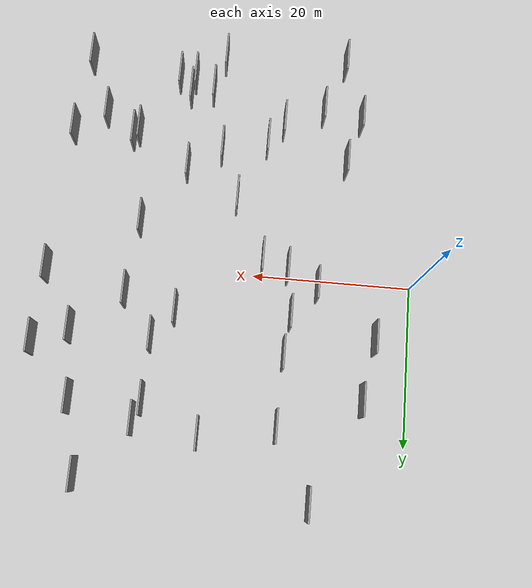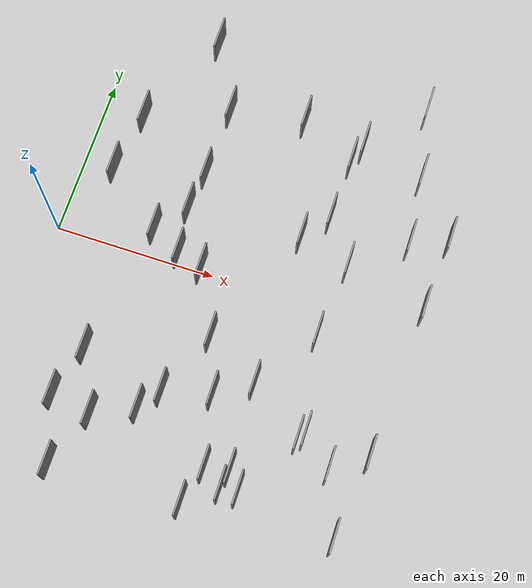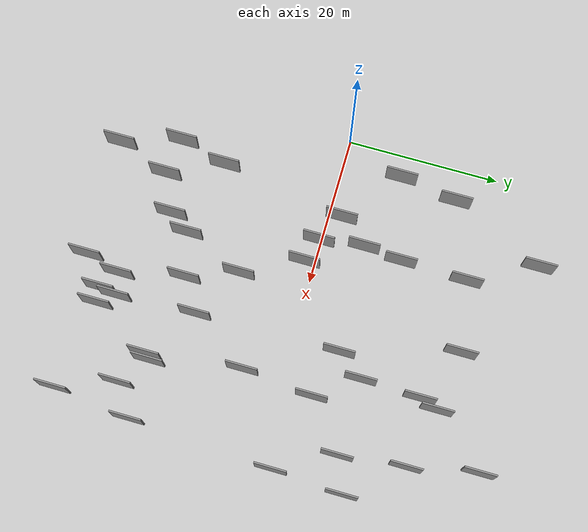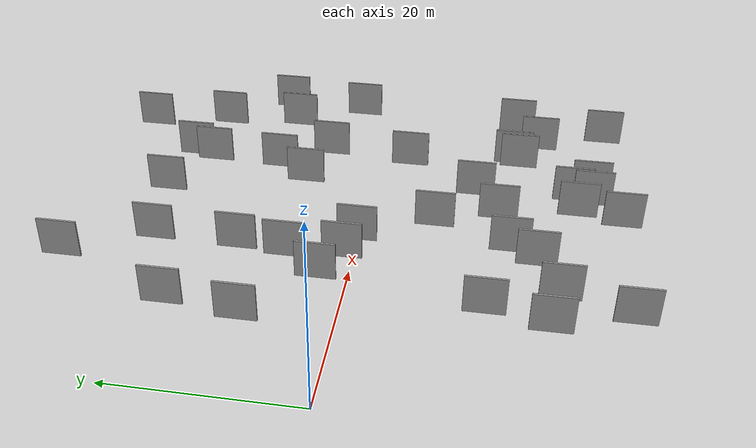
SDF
<sdf version="1.6">
 <world name="default">
  <scene>
   <sky><clouds><speed>12</speed></clouds></sky>
   <ambient>0.4 0.4 0.4 1</ambient>
   <background>0.7 0.7 0.7 1</background>
   <shadows>1</shadows>
  </scene>
  <gravity>0 0 -9.8066</gravity>
  <magnetic_field>6e-06 2.3e-05 -4.2e-05</magnetic_field>
  <physics default="0" name="default_physics" type="ode">
   <ode>
    <solver>
     <type>quick</type>
     <iters>10</iters>
     <sor>1.0</sor>
     <use_dynamic_moi_rescaling>0</use_dynamic_moi_rescaling>
    </solver>
    <constraints>
     <cfm>0</cfm>
     <erp>0.2</erp>
     <contact_max_correcting_vel>100</contact_max_correcting_vel>
     <contact_surface_layer>0.001</contact_surface_layer>
    </constraints>
   </ode>
   <max_step_size>0.004</max_step_size>
   <real_time_factor>1</real_time_factor>
   <real_time_update_rate>250</real_time_update_rate>
  </physics>
  <light name="sun" type="directional">
   <pose>0 0 10 0 0 0</pose>
   <diffuse>0.8 0.8 0.8 1</diffuse>
   <specular>0.2 0.2 0.2 1</specular>
   <attenuation>
    <range>1000</range>
    <constant>0.9</constant>
    <linear>0.01</linear>
    <quadratic>0.001</quadratic>
   </attenuation>
   <direction>-0.5 0.1 -0.9</direction>
  </light>
  <model name="grey_wall_1">
   <static>1</static>
   <pose>25.0478 20.5484 5.0 0.000000 0.000000 1.570796</pose>
   <link name="link">
    <pose>0 0 2.00 0 0 0</pose>
    <collision name="collision"><geometry><box><size>4.00 0.2 4.00</size></box></geometry></collision>
    <visual name="visual">
     <cast_shadows>0</cast_shadows>
     <geometry><box><size>4.00 0.2 4.00</size></box></geometry>
     <material>
      <script>
       <uri>model://grey_wall/materials/scripts</uri>
       <uri>model://grey_wall/materials/textures</uri>
       <name>vrc/grey_wall</name>
      </script>
     </material>
    </visual>
   </link>
  </model>
  <model name="grey_wall_2">
   <static>1</static>
   <pose>31.3514 -24.1442 5.0 0.000000 0.000000 1.570796</pose>
   <link name="link">
    <pose>0 0 2.00 0 0 0</pose>
    <collision name="collision"><geometry><box><size>4.00 0.2 4.00</size></box></geometry></collision>
    <visual name="visual">
     <cast_shadows>0</cast_shadows>
     <geometry><box><size>4.00 0.2 4.00</size></box></geometry>
     <material>
      <script>
       <uri>model://grey_wall/materials/scripts</uri>
       <uri>model://grey_wall/materials/textures</uri>
       <name>vrc/grey_wall</name>
      </script>
     </material>
    </visual>
   </link>
  </model>
  <model name="grey_wall_3">
   <static>1</static>
   <pose>42.7811 -25.7961 5.0 0.000000 0.000000 1.570796</pose>
   <link name="link">
    <pose>0 0 2.00 0 0 0</pose>
    <collision name="collision"><geometry><box><size>4.00 0.2 4.00</size></box></geometry></collision>
    <visual name="visual">
     <cast_shadows>0</cast_shadows>
     <geometry><box><size>4.00 0.2 4.00</size></box></geometry>
     <material>
      <script>
       <uri>model://grey_wall/materials/scripts</uri>
       <uri>model://grey_wall/materials/textures</uri>
       <name>vrc/grey_wall</name>
      </script>
     </material>
    </visual>
   </link>
  </model>
  <model name="grey_wall_4">
   <static>1</static>
   <pose>45.6010 11.1795 5.0 0.000000 0.000000 1.570796</pose>
   <link name="link">
    <pose>0 0 2.00 0 0 0</pose>
    <collision name="collision"><geometry><box><size>4.00 0.2 4.00</size></box></geometry></collision>
    <visual name="visual">
     <cast_shadows>0</cast_shadows>
     <geometry><box><size>4.00 0.2 4.00</size></box></geometry>
     <material>
      <script>
       <uri>model://grey_wall/materials/scripts</uri>
       <uri>model://grey_wall/materials/textures</uri>
       <name>vrc/grey_wall</name>
      </script>
     </material>
    </visual>
   </link>
  </model>
  <model name="grey_wall_5">
   <static>1</static>
   <pose>40.0653 -18.5719 5.0 0.000000 0.000000 1.570796</pose>
   <link name="link">
    <pose>0 0 2.00 0 0 0</pose>
    <collision name="collision"><geometry><box><size>4.00 0.2 4.00</size></box></geometry></collision>
    <visual name="visual">
     <cast_shadows>0</cast_shadows>
     <geometry><box><size>4.00 0.2 4.00</size></box></geometry>
     <material>
      <script>
       <uri>model://grey_wall/materials/scripts</uri>
       <uri>model://grey_wall/materials/textures</uri>
       <name>vrc/grey_wall</name>
      </script>
     </material>
    </visual>
   </link>
  </model>
  <model name="grey_wall_6">
   <static>1</static>
   <pose>32.6917 19.5149 5.0 0.000000 0.000000 1.570796</pose>
   <link name="link">
    <pose>0 0 2.00 0 0 0</pose>
    <collision name="collision"><geometry><box><size>4.00 0.2 4.00</size></box></geometry></collision>
    <visual name="visual">
     <cast_shadows>0</cast_shadows>
     <geometry><box><size>4.00 0.2 4.00</size></box></geometry>
     <material>
      <script>
       <uri>model://grey_wall/materials/scripts</uri>
       <uri>model://grey_wall/materials/textures</uri>
       <name>vrc/grey_wall</name>
      </script>
     </material>
    </visual>
   </link>
  </model>
  <model name="grey_wall_7">
   <static>1</static>
   <pose>12.8693 -21.0058 5.0 0.000000 0.000000 1.570796</pose>
   <link name="link">
    <pose>0 0 2.00 0 0 0</pose>
    <collision name="collision"><geometry><box><size>4.00 0.2 4.00</size></box></geometry></collision>
    <visual name="visual">
     <cast_shadows>0</cast_shadows>
     <geometry><box><size>4.00 0.2 4.00</size></box></geometry>
     <material>
      <script>
       <uri>model://grey_wall/materials/scripts</uri>
       <uri>model://grey_wall/materials/textures</uri>
       <name>vrc/grey_wall</name>
      </script>
     </material>
    </visual>
   </link>
  </model>
  <model name="grey_wall_8">
   <static>1</static>
   <pose>5.2008 7.8129 5.0 0.000000 0.000000 1.570796</pose>
   <link name="link">
    <pose>0 0 2.00 0 0 0</pose>
    <collision name="collision"><geometry><box><size>4.00 0.2 4.00</size></box></geometry></collision>
    <visual name="visual">
     <cast_shadows>0</cast_shadows>
     <geometry><box><size>4.00 0.2 4.00</size></box></geometry>
     <material>
      <script>
       <uri>model://grey_wall/materials/scripts</uri>
       <uri>model://grey_wall/materials/textures</uri>
       <name>vrc/grey_wall</name>
      </script>
     </material>
    </visual>
   </link>
  </model>
  <model name="grey_wall_9">
   <static>1</static>
   <pose>6.3631 15.1594 5.0 0.000000 0.000000 1.570796</pose>
   <link name="link">
    <pose>0 0 2.00 0 0 0</pose>
    <collision name="collision"><geometry><box><size>4.00 0.2 4.00</size></box></geometry></collision>
    <visual name="visual">
     <cast_shadows>0</cast_shadows>
     <geometry><box><size>4.00 0.2 4.00</size></box></geometry>
     <material>
      <script>
       <uri>model://grey_wall/materials/scripts</uri>
       <uri>model://grey_wall/materials/textures</uri>
       <name>vrc/grey_wall</name>
      </script>
     </material>
    </visual>
   </link>
  </model>
  <model name="grey_wall_10">
   <static>1</static>
   <pose>26.9566 -22.7324 5.0 0.000000 0.000000 1.570796</pose>
   <link name="link">
    <pose>0 0 2.00 0 0 0</pose>
    <collision name="collision"><geometry><box><size>4.00 0.2 4.00</size></box></geometry></collision>
    <visual name="visual">
     <cast_shadows>0</cast_shadows>
     <geometry><box><size>4.00 0.2 4.00</size></box></geometry>
     <material>
      <script>
       <uri>model://grey_wall/materials/scripts</uri>
       <uri>model://grey_wall/materials/textures</uri>
       <name>vrc/grey_wall</name>
      </script>
     </material>
    </visual>
   </link>
  </model>
  <model name="grey_wall_11">
   <static>1</static>
   <pose>34.3238 -4.4739 5.0 0.000000 0.000000 1.570796</pose>
   <link name="link">
    <pose>0 0 2.00 0 0 0</pose>
    <collision name="collision"><geometry><box><size>4.00 0.2 4.00</size></box></geometry></collision>
    <visual name="visual">
     <cast_shadows>0</cast_shadows>
     <geometry><box><size>4.00 0.2 4.00</size></box></geometry>
     <material>
      <script>
       <uri>model://grey_wall/materials/scripts</uri>
       <uri>model://grey_wall/materials/textures</uri>
       <name>vrc/grey_wall</name>
      </script>
     </material>
    </visual>
   </link>
  </model>
  <model name="grey_wall_12">
   <static>1</static>
   <pose>31.8464 17.1739 5.0 0.000000 0.000000 1.570796</pose>
   <link name="link">
    <pose>0 0 2.00 0 0 0</pose>
    <collision name="collision"><geometry><box><size>4.00 0.2 4.00</size></box></geometry></collision>
    <visual name="visual">
     <cast_shadows>0</cast_shadows>
     <geometry><box><size>4.00 0.2 4.00</size></box></geometry>
     <material>
      <script>
       <uri>model://grey_wall/materials/scripts</uri>
       <uri>model://grey_wall/materials/textures</uri>
       <name>vrc/grey_wall</name>
      </script>
     </material>
    </visual>
   </link>
  </model>
  <model name="grey_wall_13">
   <static>1</static>
   <pose>41.2607 9.4201 5.0 0.000000 0.000000 1.570796</pose>
   <link name="link">
    <pose>0 0 2.00 0 0 0</pose>
    <collision name="collision"><geometry><box><size>4.00 0.2 4.00</size></box></geometry></collision>
    <visual name="visual">
     <cast_shadows>0</cast_shadows>
     <geometry><box><size>4.00 0.2 4.00</size></box></geometry>
     <material>
      <script>
       <uri>model://grey_wall/materials/scripts</uri>
       <uri>model://grey_wall/materials/textures</uri>
       <name>vrc/grey_wall</name>
      </script>
     </material>
    </visual>
   </link>
  </model>
  <model name="grey_wall_14">
   <static>1</static>
   <pose>38.6451 26.2085 5.0 0.000000 0.000000 1.570796</pose>
   <link name="link">
    <pose>0 0 2.00 0 0 0</pose>
    <collision name="collision"><geometry><box><size>4.00 0.2 4.00</size></box></geometry></collision>
    <visual name="visual">
     <cast_shadows>0</cast_shadows>
     <geometry><box><size>4.00 0.2 4.00</size></box></geometry>
     <material>
      <script>
       <uri>model://grey_wall/materials/scripts</uri>
       <uri>model://grey_wall/materials/textures</uri>
       <name>vrc/grey_wall</name>
      </script>
     </material>
    </visual>
   </link>
  </model>
  <model name="grey_wall_15">
   <static>1</static>
   <pose>35.2316 4.5443 5.0 0.000000 0.000000 1.570796</pose>
   <link name="link">
    <pose>0 0 2.00 0 0 0</pose>
    <collision name="collision"><geometry><box><size>4.00 0.2 4.00</size></box></geometry></collision>
    <visual name="visual">
     <cast_shadows>0</cast_shadows>
     <geometry><box><size>4.00 0.2 4.00</size></box></geometry>
     <material>
      <script>
       <uri>model://grey_wall/materials/scripts</uri>
       <uri>model://grey_wall/materials/textures</uri>
       <name>vrc/grey_wall</name>
      </script>
     </material>
    </visual>
   </link>
  </model>
  <model name="grey_wall_16">
   <static>1</static>
   <pose>43.9564 -15.9695 5.0 0.000000 0.000000 1.570796</pose>
   <link name="link">
    <pose>0 0 2.00 0 0 0</pose>
    <collision name="collision"><geometry><box><size>4.00 0.2 4.00</size></box></geometry></collision>
    <visual name="visual">
     <cast_shadows>0</cast_shadows>
     <geometry><box><size>4.00 0.2 4.00</size></box></geometry>
     <material>
      <script>
       <uri>model://grey_wall/materials/scripts</uri>
       <uri>model://grey_wall/materials/textures</uri>
       <name>vrc/grey_wall</name>
      </script>
     </material>
    </visual>
   </link>
  </model>
  <model name="grey_wall_17">
   <static>1</static>
   <pose>11.8576 27.1807 5.0 0.000000 0.000000 1.570796</pose>
   <link name="link">
    <pose>0 0 2.00 0 0 0</pose>
    <collision name="collision"><geometry><box><size>4.00 0.2 4.00</size></box></geometry></collision>
    <visual name="visual">
     <cast_shadows>0</cast_shadows>
     <geometry><box><size>4.00 0.2 4.00</size></box></geometry>
     <material>
      <script>
       <uri>model://grey_wall/materials/scripts</uri>
       <uri>model://grey_wall/materials/textures</uri>
       <name>vrc/grey_wall</name>
      </script>
     </material>
    </visual>
   </link>
  </model>
  <model name="grey_wall_18">
   <static>1</static>
   <pose>25.2072 -14.6613 5.0 0.000000 0.000000 1.570796</pose>
   <link name="link">
    <pose>0 0 2.00 0 0 0</pose>
    <collision name="collision"><geometry><box><size>4.00 0.2 4.00</size></box></geometry></collision>
    <visual name="visual">
     <cast_shadows>0</cast_shadows>
     <geometry><box><size>4.00 0.2 4.00</size></box></geometry>
     <material>
      <script>
       <uri>model://grey_wall/materials/scripts</uri>
       <uri>model://grey_wall/materials/textures</uri>
       <name>vrc/grey_wall</name>
      </script>
     </material>
    </visual>
   </link>
  </model>
  <model name="grey_wall_19">
   <static>1</static>
   <pose>19.6076 -16.0816 5.0 0.000000 0.000000 1.570796</pose>
   <link name="link">
    <pose>0 0 2.00 0 0 0</pose>
    <collision name="collision"><geometry><box><size>4.00 0.2 4.00</size></box></geometry></collision>
    <visual name="visual">
     <cast_shadows>0</cast_shadows>
     <geometry><box><size>4.00 0.2 4.00</size></box></geometry>
     <material>
      <script>
       <uri>model://grey_wall/materials/scripts</uri>
       <uri>model://grey_wall/materials/textures</uri>
       <name>vrc/grey_wall</name>
      </script>
     </material>
    </visual>
   </link>
  </model>
  <model name="grey_wall_20">
   <static>1</static>
   <pose>15.8309 10.5308 5.0 0.000000 0.000000 1.570796</pose>
   <link name="link">
    <pose>0 0 2.00 0 0 0</pose>
    <collision name="collision"><geometry><box><size>4.00 0.2 4.00</size></box></geometry></collision>
    <visual name="visual">
     <cast_shadows>0</cast_shadows>
     <geometry><box><size>4.00 0.2 4.00</size></box></geometry>
     <material>
      <script>
       <uri>model://grey_wall/materials/scripts</uri>
       <uri>model://grey_wall/materials/textures</uri>
       <name>vrc/grey_wall</name>
      </script>
     </material>
    </visual>
   </link>
  </model>
  <model name="grey_wall_21">
   <static>1</static>
   <pose>29.7728 -22.2011 5.0 0.000000 0.000000 1.570796</pose>
   <link name="link">
    <pose>0 0 2.00 0 0 0</pose>
    <collision name="collision"><geometry><box><size>4.00 0.2 4.00</size></box></geometry></collision>
    <visual name="visual">
     <cast_shadows>0</cast_shadows>
     <geometry><box><size>4.00 0.2 4.00</size></box></geometry>
     <material>
      <script>
       <uri>model://grey_wall/materials/scripts</uri>
       <uri>model://grey_wall/materials/textures</uri>
       <name>vrc/grey_wall</name>
      </script>
     </material>
    </visual>
   </link>
  </model>
  <model name="grey_wall_22">
   <static>1</static>
   <pose>15.3001 5.6760 5.0 0.000000 0.000000 1.570796</pose>
   <link name="link">
    <pose>0 0 2.00 0 0 0</pose>
    <collision name="collision"><geometry><box><size>4.00 0.2 4.00</size></box></geometry></collision>
    <visual name="visual">
     <cast_shadows>0</cast_shadows>
     <geometry><box><size>4.00 0.2 4.00</size></box></geometry>
     <material>
      <script>
       <uri>model://grey_wall/materials/scripts</uri>
       <uri>model://grey_wall/materials/textures</uri>
       <name>vrc/grey_wall</name>
      </script>
     </material>
    </visual>
   </link>
  </model>
  <model name="grey_wall_23">
   <static>1</static>
   <pose>40.3450 17.6784 5.0 0.000000 0.000000 1.570796</pose>
   <link name="link">
    <pose>0 0 2.00 0 0 0</pose>
    <collision name="collision"><geometry><box><size>4.00 0.2 4.00</size></box></geometry></collision>
    <visual name="visual">
     <cast_shadows>0</cast_shadows>
     <geometry><box><size>4.00 0.2 4.00</size></box></geometry>
     <material>
      <script>
       <uri>model://grey_wall/materials/scripts</uri>
       <uri>model://grey_wall/materials/textures</uri>
       <name>vrc/grey_wall</name>
      </script>
     </material>
    </visual>
   </link>
  </model>
  <model name="grey_wall_24">
   <static>1</static>
   <pose>19.1215 -0.9535 5.0 0.000000 0.000000 1.570796</pose>
   <link name="link">
    <pose>0 0 2.00 0 0 0</pose>
    <collision name="collision"><geometry><box><size>4.00 0.2 4.00</size></box></geometry></collision>
    <visual name="visual">
     <cast_shadows>0</cast_shadows>
     <geometry><box><size>4.00 0.2 4.00</size></box></geometry>
     <material>
      <script>
       <uri>model://grey_wall/materials/scripts</uri>
       <uri>model://grey_wall/materials/textures</uri>
       <name>vrc/grey_wall</name>
      </script>
     </material>
    </visual>
   </link>
  </model>
  <model name="grey_wall_25">
   <static>1</static>
   <pose>36.4464 -15.7365 5.0 0.000000 0.000000 1.570796</pose>
   <link name="link">
    <pose>0 0 2.00 0 0 0</pose>
    <collision name="collision"><geometry><box><size>4.00 0.2 4.00</size></box></geometry></collision>
    <visual name="visual">
     <cast_shadows>0</cast_shadows>
     <geometry><box><size>4.00 0.2 4.00</size></box></geometry>
     <material>
      <script>
       <uri>model://grey_wall/materials/scripts</uri>
       <uri>model://grey_wall/materials/textures</uri>
       <name>vrc/grey_wall</name>
      </script>
     </material>
    </visual>
   </link>
  </model>
  <model name="grey_wall_26">
   <static>1</static>
   <pose>9.6724 -14.1734 5.0 0.000000 0.000000 1.570796</pose>
   <link name="link">
    <pose>0 0 2.00 0 0 0</pose>
    <collision name="collision"><geometry><box><size>4.00 0.2 4.00</size></box></geometry></collision>
    <visual name="visual">
     <cast_shadows>0</cast_shadows>
     <geometry><box><size>4.00 0.2 4.00</size></box></geometry>
     <material>
      <script>
       <uri>model://grey_wall/materials/scripts</uri>
       <uri>model://grey_wall/materials/textures</uri>
       <name>vrc/grey_wall</name>
      </script>
     </material>
    </visual>
   </link>
  </model>
  <model name="grey_wall_27">
   <static>1</static>
   <pose>45.0177 2.2825 5.0 0.000000 0.000000 1.570796</pose>
   <link name="link">
    <pose>0 0 2.00 0 0 0</pose>
    <collision name="collision"><geometry><box><size>4.00 0.2 4.00</size></box></geometry></collision>
    <visual name="visual">
     <cast_shadows>0</cast_shadows>
     <geometry><box><size>4.00 0.2 4.00</size></box></geometry>
     <material>
      <script>
       <uri>model://grey_wall/materials/scripts</uri>
       <uri>model://grey_wall/materials/textures</uri>
       <name>vrc/grey_wall</name>
      </script>
     </material>
    </visual>
   </link>
  </model>
  <model name="grey_wall_28">
   <static>1</static>
   <pose>31.5798 9.6923 5.0 0.000000 0.000000 1.570796</pose>
   <link name="link">
    <pose>0 0 2.00 0 0 0</pose>
    <collision name="collision"><geometry><box><size>4.00 0.2 4.00</size></box></geometry></collision>
    <visual name="visual">
     <cast_shadows>0</cast_shadows>
     <geometry><box><size>4.00 0.2 4.00</size></box></geometry>
     <material>
      <script>
       <uri>model://grey_wall/materials/scripts</uri>
       <uri>model://grey_wall/materials/textures</uri>
       <name>vrc/grey_wall</name>
      </script>
     </material>
    </visual>
   </link>
  </model>
  <model name="grey_wall_29">
   <static>1</static>
   <pose>29.3862 -24.2683 5.0 0.000000 0.000000 1.570796</pose>
   <link name="link">
    <pose>0 0 2.00 0 0 0</pose>
    <collision name="collision"><geometry><box><size>4.00 0.2 4.00</size></box></geometry></collision>
    <visual name="visual">
     <cast_shadows>0</cast_shadows>
     <geometry><box><size>4.00 0.2 4.00</size></box></geometry>
     <material>
      <script>
       <uri>model://grey_wall/materials/scripts</uri>
       <uri>model://grey_wall/materials/textures</uri>
       <name>vrc/grey_wall</name>
      </script>
     </material>
    </visual>
   </link>
  </model>
  <model name="grey_wall_30">
   <static>1</static>
   <pose>22.8193 -8.3436 5.0 0.000000 0.000000 1.570796</pose>
   <link name="link">
    <pose>0 0 2.00 0 0 0</pose>
    <collision name="collision"><geometry><box><size>4.00 0.2 4.00</size></box></geometry></collision>
    <visual name="visual">
     <cast_shadows>0</cast_shadows>
     <geometry><box><size>4.00 0.2 4.00</size></box></geometry>
     <material>
      <script>
       <uri>model://grey_wall/materials/scripts</uri>
       <uri>model://grey_wall/materials/textures</uri>
       <name>vrc/grey_wall</name>
      </script>
     </material>
    </visual>
   </link>
  </model>
  <model name="grey_wall_31">
   <static>1</static>
   <pose>29.0245 6.2809 5.0 0.000000 0.000000 1.570796</pose>
   <link name="link">
    <pose>0 0 2.00 0 0 0</pose>
    <collision name="collision"><geometry><box><size>4.00 0.2 4.00</size></box></geometry></collision>
    <visual name="visual">
     <cast_shadows>0</cast_shadows>
     <geometry><box><size>4.00 0.2 4.00</size></box></geometry>
     <material>
      <script>
       <uri>model://grey_wall/materials/scripts</uri>
       <uri>model://grey_wall/materials/textures</uri>
       <name>vrc/grey_wall</name>
      </script>
     </material>
    </visual>
   </link>
  </model>
  <model name="grey_wall_32">
   <static>1</static>
   <pose>16.0815 18.9887 5.0 0.000000 0.000000 1.570796</pose>
   <link name="link">
    <pose>0 0 2.00 0 0 0</pose>
    <collision name="collision"><geometry><box><size>4.00 0.2 4.00</size></box></geometry></collision>
    <visual name="visual">
     <cast_shadows>0</cast_shadows>
     <geometry><box><size>4.00 0.2 4.00</size></box></geometry>
     <material>
      <script>
       <uri>model://grey_wall/materials/scripts</uri>
       <uri>model://grey_wall/materials/textures</uri>
       <name>vrc/grey_wall</name>
      </script>
     </material>
    </visual>
   </link>
  </model>
  <model name="grey_wall_33">
   <static>1</static>
   <pose>10.4331 -27.6909 5.0 0.000000 0.000000 1.570796</pose>
   <link name="link">
    <pose>0 0 2.00 0 0 0</pose>
    <collision name="collision"><geometry><box><size>4.00 0.2 4.00</size></box></geometry></collision>
    <visual name="visual">
     <cast_shadows>0</cast_shadows>
     <geometry><box><size>4.00 0.2 4.00</size></box></geometry>
     <material>
      <script>
       <uri>model://grey_wall/materials/scripts</uri>
       <uri>model://grey_wall/materials/textures</uri>
       <name>vrc/grey_wall</name>
      </script>
     </material>
    </visual>
   </link>
  </model>
  <model name="grey_wall_34">
   <static>1</static>
   <pose>12.3306 1.9540 5.0 0.000000 0.000000 1.570796</pose>
   <link name="link">
    <pose>0 0 2.00 0 0 0</pose>
    <collision name="collision"><geometry><box><size>4.00 0.2 4.00</size></box></geometry></collision>
    <visual name="visual">
     <cast_shadows>0</cast_shadows>
     <geometry><box><size>4.00 0.2 4.00</size></box></geometry>
     <material>
      <script>
       <uri>model://grey_wall/materials/scripts</uri>
       <uri>model://grey_wall/materials/textures</uri>
       <name>vrc/grey_wall</name>
      </script>
     </material>
    </visual>
   </link>
  </model>
  <model name="grey_wall_35">
   <static>1</static>
   <pose>17.7262 -18.7184 5.0 0.000000 0.000000 1.570796</pose>
   <link name="link">
    <pose>0 0 2.00 0 0 0</pose>
    <collision name="collision"><geometry><box><size>4.00 0.2 4.00</size></box></geometry></collision>
    <visual name="visual">
     <cast_shadows>0</cast_shadows>
     <geometry><box><size>4.00 0.2 4.00</size></box></geometry>
     <material>
      <script>
       <uri>model://grey_wall/materials/scripts</uri>
       <uri>model://grey_wall/materials/textures</uri>
       <name>vrc/grey_wall</name>
      </script>
     </material>
    </visual>
   </link>
  </model>
  <model name="grey_wall_36">
   <static>1</static>
   <pose>29.3088 -12.0471 5.0 0.000000 0.000000 1.570796</pose>
   <link name="link">
    <pose>0 0 2.00 0 0 0</pose>
    <collision name="collision"><geometry><box><size>4.00 0.2 4.00</size></box></geometry></collision>
    <visual name="visual">
     <cast_shadows>0</cast_shadows>
     <geometry><box><size>4.00 0.2 4.00</size></box></geometry>
     <material>
      <script>
       <uri>model://grey_wall/materials/scripts</uri>
       <uri>model://grey_wall/materials/textures</uri>
       <name>vrc/grey_wall</name>
      </script>
     </material>
    </visual>
   </link>
  </model>
  <model name="grey_wall_37">
   <static>1</static>
   <pose>15.9998 0.0402 5.0 0.000000 0.000000 1.570796</pose>
   <link name="link">
    <pose>0 0 2.00 0 0 0</pose>
    <collision name="collision"><geometry><box><size>4.00 0.2 4.00</size></box></geometry></collision>
    <visual name="visual">
     <cast_shadows>0</cast_shadows>
     <geometry><box><size>4.00 0.2 4.00</size></box></geometry>
     <material>
      <script>
       <uri>model://grey_wall/materials/scripts</uri>
       <uri>model://grey_wall/materials/textures</uri>
       <name>vrc/grey_wall</name>
      </script>
     </material>
    </visual>
   </link>
  </model>
  <model name="grey_wall_38">
   <static>1</static>
   <pose>25.7337 -27.2070 5.0 0.000000 0.000000 1.570796</pose>
   <link name="link">
    <pose>0 0 2.00 0 0 0</pose>
    <collision name="collision"><geometry><box><size>4.00 0.2 4.00</size></box></geometry></collision>
    <visual name="visual">
     <cast_shadows>0</cast_shadows>
     <geometry><box><size>4.00 0.2 4.00</size></box></geometry>
     <material>
      <script>
       <uri>model://grey_wall/materials/scripts</uri>
       <uri>model://grey_wall/materials/textures</uri>
       <name>vrc/grey_wall</name>
      </script>
     </material>
    </visual>
   </link>
  </model>
  <model name="grey_wall_39">
   <static>1</static>
   <pose>8.0781 -20.2077 5.0 0.000000 0.000000 1.570796</pose>
   <link name="link">
    <pose>0 0 2.00 0 0 0</pose>
    <collision name="collision"><geometry><box><size>4.00 0.2 4.00</size></box></geometry></collision>
    <visual name="visual">
     <cast_shadows>0</cast_shadows>
     <geometry><box><size>4.00 0.2 4.00</size></box></geometry>
     <material>
      <script>
       <uri>model://grey_wall/materials/scripts</uri>
       <uri>model://grey_wall/materials/textures</uri>
       <name>vrc/grey_wall</name>
      </script>
     </material>
    </visual>
   </link>
  </model>
  <model name="grey_wall_40">
   <static>1</static>
   <pose>35.7697 -16.4097 5.0 0.000000 0.000000 1.570796</pose>
   <link name="link">
    <pose>0 0 2.00 0 0 0</pose>
    <collision name="collision"><geometry><box><size>4.00 0.2 4.00</size></box></geometry></collision>
    <visual name="visual">
     <cast_shadows>0</cast_shadows>
     <geometry><box><size>4.00 0.2 4.00</size></box></geometry>
     <material>
      <script>
       <uri>model://grey_wall/materials/scripts</uri>
       <uri>model://grey_wall/materials/textures</uri>
       <name>vrc/grey_wall</name>
      </script>
     </material>
    </visual>
   </link>
  </model>
 </world>
</sdf>
